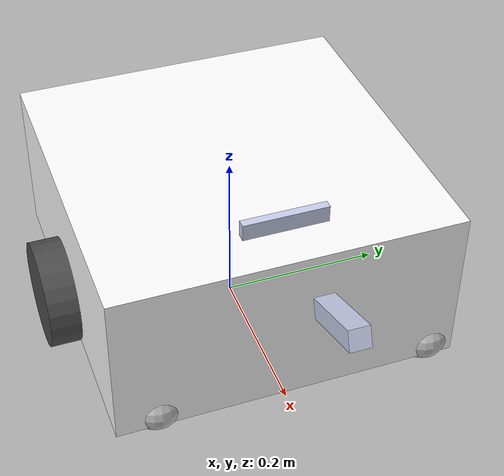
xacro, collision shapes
<?xml version="1.0"?>
<robot name="food_del_robot"
  xmlns:xacro="http://www.ros.org/wiki/xacro">

  <xacro:arg name="use_sim" default="false"/>

  <!-- ============================================================
       Inertia macros
       ============================================================ -->

  <xacro:macro name="box_inertia" params="m l w h xyz rpy">
    <inertial>
      <origin xyz="${xyz}" rpy="${rpy}"/>
      <mass value="${m}"/>
      <inertia ixx="${(1/12.0) * m * (h*h + l*l)}" ixy="0" ixz="0"
               iyy="${(1/12.0) * m * (w*w + l*l)}" iyz="0"
               izz="${(1/12.0) * m * (w*w + h*h)}"/>
    </inertial>
  </xacro:macro>

  <xacro:macro name="cylinder_inertia" params="m r h xyz rpy">
    <inertial>
      <origin xyz="${xyz}" rpy="${rpy}"/>
      <mass value="${m}"/>
      <inertia ixx="${(1/12.0) * m * (3*r*r + h*h)}" ixy="0" ixz="0"
               iyy="${(1/12.0) * m * (3*r*r + h*h)}" iyz="0"
               izz="${0.5 * m * r*r}"/>
    </inertial>
  </xacro:macro>

  <xacro:macro name="sphere_inertia" params="m r xyz rpy">
    <inertial>
      <origin xyz="${xyz}" rpy="${rpy}"/>
      <mass value="${m}"/>
      <inertia ixx="${(2/5.0) * m * r*r}" ixy="0" ixz="0"
               iyy="${(2/5.0) * m * r*r}" iyz="0"
               izz="${(2/5.0) * m * r*r}"/>
    </inertial>
  </xacro:macro>

  <xacro:macro name="wheel_inertia" params="m r h xyz rpy">
    <inertial>
      <origin xyz="${xyz}" rpy="${rpy}"/>
      <mass value="${m}"/>
      <inertia ixx="${(1/12.0) * m * (3*r*r + h*h)}" ixy="0" ixz="0"
               iyy="${0.5 * m * r*r}"                 iyz="0"
               izz="${(1/12.0) * m * (3*r*r + h*h)}"/>
    </inertial>
  </xacro:macro>

  <!-- ============================================================
       Links
       ============================================================ -->

  <link name="base_footprint"/>

  <joint name="base_footprint_joint" type="fixed">
    <parent link="base_footprint"/>
    <child link="base_link"/>
    <origin xyz="0 0 0.01" rpy="0 0 0"/>
  </joint>

  <link name="base_link">
    <xacro:box_inertia m="10.0" l="0.42" w="0.2" h="0.2"
                       xyz="0 0 0.11" rpy="0 0 0"/>
    <visual>
      <origin xyz="0 0 0.213" rpy="0 0 0"/>
      <geometry>
        <mesh filename="package://food_del_robot_description/meshes/base_link.STL"/>
      </geometry>
      <material name="">
        <color rgba="1 1 1 1"/>
      </material>
    </visual>
    <collision>
      <origin xyz="0 0 0.11" rpy="0 0 0"/>
      <geometry>
        <box size="0.42 0.42 0.2"/>
      </geometry>
    </collision>
  </link>

  <link name="right_wheel_link">
    <xacro:wheel_inertia m="1.5" r="0.0655" h="0.045"
                         xyz="0 0 0" rpy="0 0 0"/>
    <visual>
      <origin xyz="0 0 0" rpy="0 0 0"/>
      <geometry>
        <mesh filename="package://food_del_robot_description/meshes/right_wheel_link.STL"/>
      </geometry>
      <material name="">
        <color rgba="0.3 0.3 0.3 1"/>
      </material>
    </visual>
    <collision>
      <origin xyz="0 0 0" rpy="1.5708 0 0"/>
      <geometry>
        <cylinder radius="0.0655" length="0.045"/>
      </geometry>
    </collision>
  </link>

  <joint name="right_wheel_base_joint" type="continuous">
    <origin xyz="0.0 -0.225 0.0555" rpy="0 0 0"/>
    <parent link="base_link"/>
    <child link="right_wheel_link"/>
    <axis xyz="0 1 0"/>
  </joint>

  <link name="left_wheel_link">
    <xacro:wheel_inertia m="1.5" r="0.0655" h="0.045"
                         xyz="0 0 0" rpy="0 0 0"/>
    <visual>
      <origin xyz="0 0 0" rpy="0 0 0"/>
      <geometry>
        <mesh filename="package://food_del_robot_description/meshes/left_wheel_link.STL"/>
      </geometry>
      <material name="">
        <color rgba="0.3 0.3 0.3 1"/>
      </material>
    </visual>
    <collision>
      <origin xyz="0 0 0" rpy="1.5708 0 0"/>
      <geometry>
        <cylinder radius="0.0655" length="0.045"/>
      </geometry>
    </collision>
  </link>

  <joint name="left_wheel_base_joint" type="continuous">
    <origin xyz="0 0.225 0.0555" rpy="0 0 0"/>
    <parent link="base_link"/>
    <child link="left_wheel_link"/>
    <axis xyz="0 1 0"/>
  </joint>

  <!-- ============================================================
       LiDAR — RPLidar A1
       ============================================================ -->
  <link name="lidar_link">
    <xacro:box_inertia m="0.01" l="0.1" w="0.1" h="0.02"
                       xyz="0 0 0" rpy="0 0 0"/>
    <visual>
      <origin xyz="0 0 0" rpy="0 0 0"/>
      <geometry>
        <mesh filename="package://food_del_robot_description/meshes/lidar_link.STL"/>
      </geometry>
      <material name="">
        <color rgba="0.79 0.82 0.93 1"/>
      </material>
    </visual>
    <collision>
      <origin xyz="0 0 0" rpy="0 0 0"/>
      <geometry>
        <box size="0.01 0.1 0.02"/>
      </geometry>
    </collision>
  </link>

  <joint name="lidar_base_link" type="fixed">
    <origin xyz="0.178 0 0.2436" rpy="0 0 0"/>
    <parent link="base_link"/>
    <child link="lidar_link"/>
    <axis xyz="0 0 0"/>
  </joint>

  <!-- ============================================================
       Camera — Intel RealSense D435
       ============================================================ -->
  <link name="camera_link">
    <xacro:box_inertia m="0.072" l="0.09" w="0.025" h="0.025"
                       xyz="0 0 0" rpy="0 0 0"/>
    <visual>
      <origin xyz="0 0 0" rpy="0 0 0"/>
      <geometry>
        <mesh filename="package://food_del_robot_description/meshes/camera_link.STL"/>
      </geometry>
      <material name="">
        <color rgba="0.79 0.82 0.93 1"/>
      </material>
    </visual>
    <collision>
      <origin xyz="0 0 0" rpy="0 0 0"/>
      <geometry>
        <box size="0.09 0.025 0.025"/>
      </geometry>
    </collision>
  </link>

  <joint name="camera_base_joint" type="fixed">
    <origin xyz="0.295 0.0185 0.195" rpy="0 -0.35 0"/>
    <parent link="base_link"/>
    <child link="camera_link"/>
    <axis xyz="0 0 0"/>
  </joint>

  <!-- ============================================================
       IMU
       ============================================================ -->
  <link name="imu_link">
    <xacro:box_inertia m="0.01" l="0.01" w="0.01" h="0.01"
                       xyz="0 0 0" rpy="0 0 0"/>
    <visual>
      <origin xyz="0 0 0" rpy="0 0 0"/>
      <geometry>
        <mesh filename="package://food_del_robot_description/meshes/imu_link.STL"/>
      </geometry>
      <material name="">
        <color rgba="0.3 0.3 0.3 1"/>
      </material>
    </visual>
    <collision>
      <origin xyz="0 0 0" rpy="0 0 0"/>
      <geometry>
        <box size="0.02 0.02 0.01"/>
      </geometry>
    </collision>
  </link>

  <joint name="imu_base_joint" type="fixed">
    <origin xyz="0 0 0.1106" rpy="0 0 0"/>
    <parent link="base_link"/>
    <child link="imu_link"/>
    <axis xyz="0 0 0"/>
  </joint>

  <!-- ============================================================
       Caster wheels
       ============================================================ -->
  <link name="caster1_link">
    <xacro:sphere_inertia m="0.108" r="0.0325" xyz="0 0 0" rpy="0 0 0"/>
    <visual><origin xyz="0 0 0" rpy="0 0 0"/>
      <geometry><mesh filename="package://food_del_robot_description/meshes/caster1_link.STL"/></geometry>
      <material name=""><color rgba="0.75 0.75 0.75 1"/></material>
    </visual>
    <collision><origin xyz="0 0 0" rpy="0 0 0"/>
      <geometry><sphere radius="0.0325"/></geometry>
    </collision>
  </link>
  <joint name="c1_b_joint" type="fixed">
    <origin xyz="-0.1845 -0.1559745 0.0225" rpy="0 0 0"/>
    <parent link="base_link"/><child link="caster1_link"/>
    <axis xyz="0 0 0"/>
  </joint>

  <link name="caster2_link">
    <xacro:sphere_inertia m="0.108" r="0.0325" xyz="0 0 0" rpy="0 0 0"/>
    <visual><origin xyz="0 0 0" rpy="0 0 0"/>
      <geometry><mesh filename="package://food_del_robot_description/meshes/caster2_link.STL"/></geometry>
      <material name=""><color rgba="0.75 0.75 0.75 1"/></material>
    </visual>
    <collision><origin xyz="0 0 0" rpy="0 0 0"/>
      <geometry><sphere radius="0.0325"/></geometry>
    </collision>
  </link>
  <joint name="c2_b_joint" type="fixed">
    <origin xyz="-0.1845 0.18303 0.0225" rpy="0 0 0"/>
    <parent link="base_link"/><child link="caster2_link"/>
    <axis xyz="0 0 0"/>
  </joint>

  <link name="caster3_link">
    <xacro:sphere_inertia m="0.108" r="0.0325" xyz="0 0 0" rpy="0 0 0"/>
    <visual><origin xyz="0 0 0" rpy="0 0 0"/>
      <geometry><mesh filename="package://food_del_robot_description/meshes/caster3_link.STL"/></geometry>
      <material name=""><color rgba="0.75 0.75 0.75 1"/></material>
    </visual>
    <collision><origin xyz="0 0 0" rpy="0 0 0"/>
      <geometry><sphere radius="0.0325"/></geometry>
    </collision>
  </link>
  <joint name="c3_b_joint" type="fixed">
    <origin xyz="0.1845 -0.15597 0.0225" rpy="0 0 0"/>
    <parent link="base_link"/><child link="caster3_link"/>
    <axis xyz="0 0 0"/>
  </joint>

  <link name="caster4_link">
    <xacro:sphere_inertia m="0.108" r="0.0325" xyz="0 0 0" rpy="0 0 0"/>
    <visual><origin xyz="0 0 0" rpy="0 0 0"/>
      <geometry><mesh filename="package://food_del_robot_description/meshes/caster4_link.STL"/></geometry>
      <material name=""><color rgba="0.75 0.75 0.75 1"/></material>
    </visual>
    <collision><origin xyz="0 0 0" rpy="0 0 0"/>
      <geometry><sphere radius="0.0325"/></geometry>
    </collision>
  </link>
  <joint name="c4_b_joint" type="fixed">
    <origin xyz="0.1845 0.18303 0.0225" rpy="0 0 0"/>
    <parent link="base_link"/><child link="caster4_link"/>
    <axis xyz="0 0 0"/>
  </joint>

</robot>
